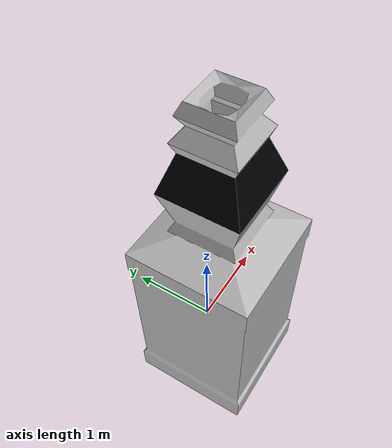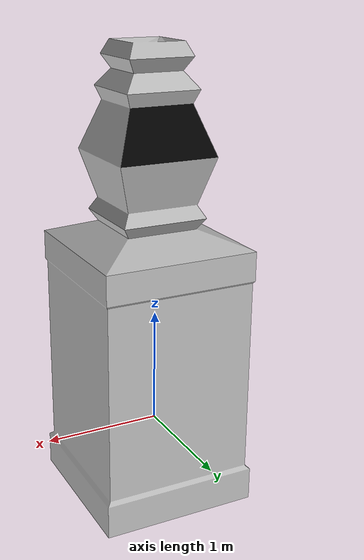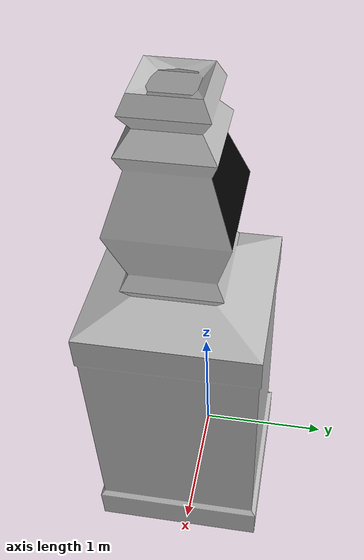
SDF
<sdf version="1.4">
  <model name="jack_daniels">
    <static>0</static>
    <link name="link">
      <inertial>
        <mass>0.05</mass>
        <inertia>
          <ixx>0.000052083</ixx>
          <ixy>0.0</ixy>
          <ixz>0.0</ixz>
          <iyy>0.000052083</iyy>
          <iyz>0.0</iyz>
          <izz>0.000001</izz>
        </inertia>
      </inertial>
      <collision name="collision">
        <pose>0 0 0 0 0 0</pose>
        <geometry>
          <box>
              <size>0.06 0.06 0.14</size>
          </box>
        </geometry>
        <surface>
          <friction>
            <ode>
              <mu>100.0</mu>
              <mu2>50.0</mu2>
              <fdir1>1 1 0</fdir1>
            </ode>
          </friction>
          <contact>
            <ode>
              <kp>214748364000.0</kp>
              <kd>0.1</kd>
            </ode>
          </contact>
        </surface>
      </collision>
      <visual name="visual1">
        <pose>0 0 0 0 0 0</pose>
        <geometry>
          <mesh>
            <uri>model://jack_daniels/meshes/jack_daniels_simple.dae</uri>
            <scale> 0.7 0.7 0.7 </scale>
          </mesh>
        </geometry>
      </visual>
      <velocity_decay>
        <linear>0.000000</linear>
        <angular>0.000000</angular>
      </velocity_decay>
      <self_collide>0</self_collide>
      <kinematic>0</kinematic>
      <gravity>1</gravity>
    </link>
  </model>
</sdf>
